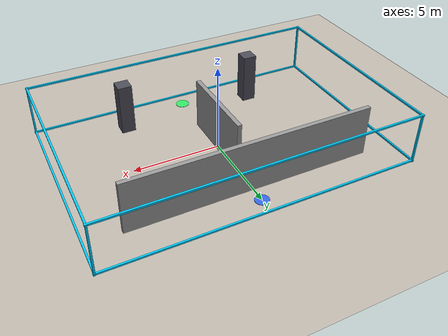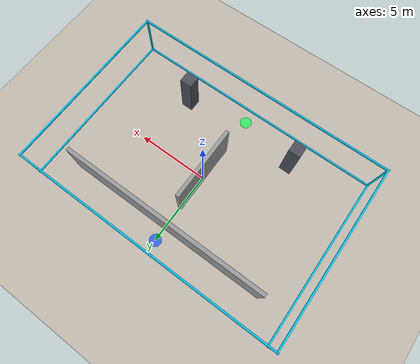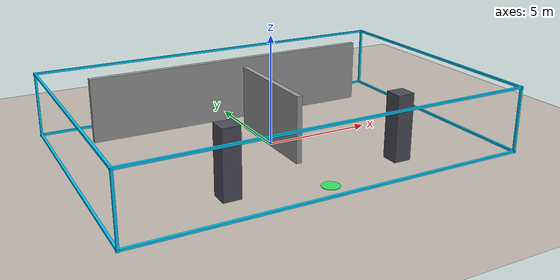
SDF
<?xml version="1.0" ?>
<sdf version="1.9">
  <world name="custom_drawn_world">
    <physics type="ode">
      <max_step_size>0.004</max_step_size>
      <real_time_factor>1.0</real_time_factor>
      <real_time_update_rate>250</real_time_update_rate>
    </physics>
    <plugin name="gz::sim::systems::Physics" filename="gz-sim-physics-system"/>
    <plugin name="gz::sim::systems::UserCommands" filename="gz-sim-user-commands-system"/>
    <plugin name="gz::sim::systems::SceneBroadcaster" filename="gz-sim-scene-broadcaster-system"/>
    <plugin name="gz::sim::systems::Contact" filename="gz-sim-contact-system"/>
    <plugin name="gz::sim::systems::Imu" filename="gz-sim-imu-system"/>
    <plugin name="gz::sim::systems::AirPressure" filename="gz-sim-air-pressure-system"/>
    <plugin name="gz::sim::systems::ApplyLinkWrench" filename="gz-sim-apply-link-wrench-system"/>
    <plugin name="gz::sim::systems::Sensors" filename="gz-sim-sensors-system">
      <render_engine>ogre2</render_engine>
    </plugin>
    <gui fullscreen="false"/>

    <!-- Sunlight -->
    <light type="directional" name="sun">
      <cast_shadows>true</cast_shadows>
      <pose>0 0 10 0 0 0</pose>
      <diffuse>0.8 0.8 0.8 1</diffuse>
      <specular>0.2 0.2 0.2 1</specular>
      <attenuation>
        <range>1000</range>
        <constant>0.9</constant>
        <linear>0.01</linear>
        <quadratic>0.001</quadratic>
      </attenuation>
      <direction>-0.5 0.1 -0.9</direction>
    </light>

    <!-- GROUND PLANE — 18m x 12m -->
    <model name="ground_plane">
      <static>true</static>
      <pose>0 0 0 0 0 0</pose>
      <link name="link">
        <collision name="collision">
          <geometry><plane><normal>0 0 1</normal><size>18 12</size></plane></geometry>
          <surface><friction><ode><mu>100</mu><mu2>50</mu2></ode></friction></surface>
        </collision>
        <visual name="visual">
          <geometry><plane><normal>0 0 1</normal><size>18 12</size></plane></geometry>
          <material>
            <ambient>0.75 0.72 0.68 1</ambient>
            <diffuse>0.75 0.72 0.68 1</diffuse>
          </material>
        </visual>
      </link>
    </model>

    <!-- OUTER WALLS — Invisible collisions + cyan wireframe -->
    <model name="outer_walls">
      <static>true</static>
      <link name="walls_link">
        <collision name="c_north"><pose>0 6 1.5 0 0 0</pose><geometry><box><size>18 0.15 3</size></box></geometry></collision>
        <collision name="c_south"><pose>0 -6 1.5 0 0 0</pose><geometry><box><size>18 0.15 3</size></box></geometry></collision>
        <collision name="c_east"><pose>9 0 1.5 0 0 0</pose><geometry><box><size>0.15 12 3</size></box></geometry></collision>
        <collision name="c_west"><pose>-9 0 1.5 0 0 0</pose><geometry><box><size>0.15 12 3</size></box></geometry></collision>
        <collision name="c_ceiling"><pose>0 0 3 0 0 0</pose><geometry><box><size>18 12 0.1</size></box></geometry></collision>

        <!-- Cyan wireframe visual elements -->
        <visual name="vp_nw"><pose>-8.925 5.925 1.5 0 0 0</pose><geometry><box><size>0.1 0.1 3</size></box></geometry><material><ambient>0 0.8 1 1</ambient><diffuse>0 0.8 1 1</diffuse></material></visual>
        <visual name="vp_ne"><pose>8.925 5.925 1.5 0 0 0</pose><geometry><box><size>0.1 0.1 3</size></box></geometry><material><ambient>0 0.8 1 1</ambient><diffuse>0 0.8 1 1</diffuse></material></visual>
        <visual name="vp_sw"><pose>-8.925 -5.925 1.5 0 0 0</pose><geometry><box><size>0.1 0.1 3</size></box></geometry><material><ambient>0 0.8 1 1</ambient><diffuse>0 0.8 1 1</diffuse></material></visual>
        <visual name="vp_se"><pose>8.925 -5.925 1.5 0 0 0</pose><geometry><box><size>0.1 0.1 3</size></box></geometry><material><ambient>0 0.8 1 1</ambient><diffuse>0 0.8 1 1</diffuse></material></visual>
        <visual name="vt_n"><pose>0 5.925 3 0 0 0</pose><geometry><box><size>18 0.1 0.1</size></box></geometry><material><ambient>0 0.8 1 1</ambient><diffuse>0 0.8 1 1</diffuse></material></visual>
        <visual name="vt_s"><pose>0 -5.925 3 0 0 0</pose><geometry><box><size>18 0.1 0.1</size></box></geometry><material><ambient>0 0.8 1 1</ambient><diffuse>0 0.8 1 1</diffuse></material></visual>
        <visual name="vt_e"><pose>8.925 0 3 0 0 0</pose><geometry><box><size>0.1 12 0.1</size></box></geometry><material><ambient>0 0.8 1 1</ambient><diffuse>0 0.8 1 1</diffuse></material></visual>
        <visual name="vt_w"><pose>-8.925 0 3 0 0 0</pose><geometry><box><size>0.1 12 0.1</size></box></geometry><material><ambient>0 0.8 1 1</ambient><diffuse>0 0.8 1 1</diffuse></material></visual>
        <visual name="vb_n"><pose>0 5.925 0.05 0 0 0</pose><geometry><box><size>18 0.1 0.1</size></box></geometry><material><ambient>0 0.8 1 1</ambient><diffuse>0 0.8 1 1</diffuse></material></visual>
        <visual name="vb_s"><pose>0 -5.925 0.05 0 0 0</pose><geometry><box><size>18 0.1 0.1</size></box></geometry><material><ambient>0 0.8 1 1</ambient><diffuse>0 0.8 1 1</diffuse></material></visual>
        <visual name="vb_e"><pose>8.925 0 0.05 0 0 0</pose><geometry><box><size>0.1 12 0.1</size></box></geometry><material><ambient>0 0.8 1 1</ambient><diffuse>0 0.8 1 1</diffuse></material></visual>
        <visual name="vb_w"><pose>-8.925 0 0.05 0 0 0</pose><geometry><box><size>0.1 12 0.1</size></box></geometry><material><ambient>0 0.8 1 1</ambient><diffuse>0 0.8 1 1</diffuse></material></visual>
      </link>
    </model>

    <!-- CUSTOM DRAWN LAYOUT ELEMENTS                                 -->

    <!-- "Wall 1": Horizontal wall near the top -->
    <model name="wall_1">
      <static>true</static>
      <pose>0 4 1.5 0 0 0</pose>
      <link name="link">
        <collision name="c"><geometry><box><size>14.0 0.25 3.0</size></box></geometry></collision>
        <visual name="v"><geometry><box><size>14.0 0.25 3.0</size></box></geometry>
          <material><ambient>0.6 0.6 0.6 1</ambient><diffuse>0.6 0.6 0.6 1</diffuse></material>
        </visual>
      </link>
    </model>

    <!-- "Wall 2": Vertical wall in the center -->
    <model name="wall_2">
      <static>true</static>
      <pose>0 0 1.5 0 0 0</pose>
      <link name="link">
        <collision name="c"><geometry><box><size>0.25 5.0 3.0</size></box></geometry></collision>
        <visual name="v"><geometry><box><size>0.25 5.0 3.0</size></box></geometry>
          <material><ambient>0.6 0.6 0.6 1</ambient><diffuse>0.6 0.6 0.6 1</diffuse></material>
        </visual>
      </link>
    </model>

    <!-- "Two square Pillar": Left Pillar -->
    <model name="pillar_left">
      <static>true</static>
      <pose>-4 -4 1.5 0 0 0</pose>
      <link name="link">
        <collision name="c"><geometry><box><size>0.8 0.8 3.0</size></box></geometry></collision>
        <visual name="v"><geometry><box><size>0.8 0.8 3.0</size></box></geometry>
          <material><ambient>0.3 0.3 0.35 1</ambient><diffuse>0.3 0.3 0.35 1</diffuse></material>
        </visual>
      </link>
    </model>

    <!-- "Two square Pillar": Right Pillar -->
    <model name="pillar_right">
      <static>true</static>
      <pose>4 -4 1.5 0 0 0</pose>
      <link name="link">
        <collision name="c"><geometry><box><size>0.8 0.8 3.0</size></box></geometry></collision>
        <visual name="v"><geometry><box><size>0.8 0.8 3.0</size></box></geometry>
          <material><ambient>0.3 0.3 0.35 1</ambient><diffuse>0.3 0.3 0.35 1</diffuse></material>
        </visual>
      </link>
    </model>

    <!-- MARKERS (Start and Destination)                              -->

    <!-- Green Marker (Start Area - Bottom Center) -->
    <model name="marker_start">
      <static>true</static>
      <pose>0 -5 0.01 0 0 0</pose>
      <link name="link">
        <visual name="v">
          <geometry><cylinder><radius>0.4</radius><length>0.02</length></cylinder></geometry>
          <material><ambient>0.2 0.9 0.4 1</ambient><diffuse>0.2 0.9 0.4 1</diffuse></material>
        </visual>
      </link>
    </model>

    <!-- Blue Marker (Destination Area - Top Center) -->
    <model name="marker_dest">
      <static>true</static>
      <pose>0 5 0.01 0 0 0</pose>
      <link name="link">
        <visual name="v">
          <geometry><cylinder><radius>0.4</radius><length>0.02</length></cylinder></geometry>
          <material><ambient>0.2 0.4 0.9 1</ambient><diffuse>0.2 0.4 0.9 1</diffuse></material>
        </visual>
      </link>
    </model>

  </world>
</sdf>
